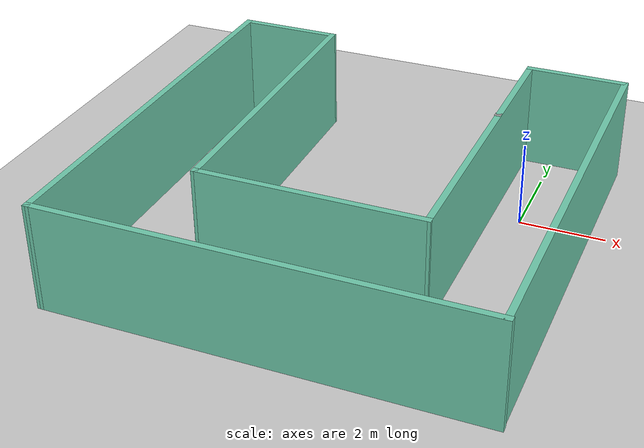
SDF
<sdf version="1.6">
 <world name="default">
  <light name="sun" type="directional">
   <pose>0 0 10 0 -0 0</pose>
   <diffuse>0.8 0.8 0.8 1</diffuse>
   <specular>0.2 0.2 0.2 1</specular>
   <attenuation>
    <range>1000</range>
    <constant>0.9</constant>
    <linear>0.01</linear>
    <quadratic>0.001</quadratic>
   </attenuation>
   <direction>-0.5 0.1 -0.9</direction>
  </light>
  <model name="ground_plane">
   <static>1</static>
   <link name="link">
    <collision name="collision">
     <geometry><plane><normal>0 0 1</normal><size>100 100</size></plane></geometry>
     <surface>
      <contact><collide_bitmask>65535</collide_bitmask></contact>
      <friction><ode><mu>100</mu><mu2>50</mu2></ode></friction>
     </surface>
    </collision>
    <visual name="visual">
     <cast_shadows>0</cast_shadows>
     <geometry><plane><normal>0 0 1</normal><size>100 100</size></plane></geometry>
     <material>
      <script><uri>file://media/materials/scripts/gazebo.material</uri><name>Gazebo/Grey</name></script>
     </material>
    </visual>
   </link>
  </model>
  <gravity>0 0 -9.8</gravity>
  <magnetic_field>6e-06 2.3e-05 -4.2e-05</magnetic_field>
  <atmosphere type="adiabatic"/>
  <physics name="default_physics" default="0" type="ode">
   <max_step_size>0.001</max_step_size>
   <real_time_factor>1</real_time_factor>
   <real_time_update_rate>1000</real_time_update_rate>
  </physics>
  <scene><ambient>0.4 0.4 0.4 1</ambient><background>0.7 0.7 0.7 1</background><shadows>1</shadows></scene>
  <spherical_coordinates>
   <surface_model>EARTH_WGS84</surface_model>
   <latitude_deg>0</latitude_deg>
   <longitude_deg>0</longitude_deg>
   <elevation>0</elevation>
   <heading_deg>0</heading_deg>
  </spherical_coordinates>
  <model name="simple">
   <pose>-3.34842 -1.98124 0 0 -0 0</pose>
   <link name="Wall_13">
    <collision name="Wall_13_Collision">
     <geometry><box><size>2.43882 0.15 2.5</size></box></geometry>
     <pose>0 0 1.25 0 -0 0</pose>
    </collision>
    <visual name="Wall_13_Visual">
     <pose>0 0 1.25 0 -0 0</pose>
     <geometry><box><size>2.43882 0.15 2.5</size></box></geometry>
     <material>
      <script><uri>file://media/materials/scripts/gazebo.material</uri><name>Gazebo/Grey</name></script>
      <ambient>0.435294 0.796078 0.67451 1</ambient>
     </material>
     <meta><layer>0</layer></meta>
    </visual>
    <pose>3.76217 4.92476 0 0 -0 0</pose>
   </link>
   <link name="Wall_15">
    <collision name="Wall_15_Collision">
     <geometry><box><size>10 0.15 2.5</size></box></geometry>
     <pose>0 0 1.25 0 -0 0</pose>
    </collision>
    <visual name="Wall_15_Visual">
     <pose>0 0 1.25 0 -0 0</pose>
     <geometry><box><size>10 0.15 2.5</size></box></geometry>
     <material>
      <script><uri>file://media/materials/scripts/gazebo.material</uri><name>Gazebo/Grey</name></script>
      <ambient>0.435294 0.796078 0.67451 1</ambient>
     </material>
     <meta><layer>0</layer></meta>
    </visual>
    <pose>5.4e-05 -4.92524 0 0 -0 3.14159</pose>
   </link>
   <link name="Wall_17">
    <collision name="Wall_17_Collision">
     <geometry><box><size>10 0.15 2.5</size></box></geometry>
     <pose>0 0 1.25 0 -0 0</pose>
    </collision>
    <visual name="Wall_17_Visual">
     <pose>0 0 1.25 0 -0 0</pose>
     <geometry><box><size>10 0.15 2.5</size></box></geometry>
     <material>
      <script><uri>file://media/materials/scripts/gazebo.material</uri><name>Gazebo/Grey</name></script>
      <ambient>0.435294 0.796078 0.67451 1</ambient>
     </material>
     <meta><layer>0</layer></meta>
    </visual>
    <pose>-4.91794 -0.00024 0 0 0 -1.57222</pose>
   </link>
   <link name="Wall_19">
    <collision name="Wall_19_Collision">
     <geometry><box><size>10 0.15 2.5</size></box></geometry>
     <pose>0 0 1.25 0 -0 0</pose>
    </collision>
    <visual name="Wall_19_Visual">
     <pose>0 0 1.25 0 -0 0</pose>
     <geometry><box><size>10 0.15 2.5</size></box></geometry>
     <material>
      <script><uri>file://media/materials/scripts/gazebo.material</uri><name>Gazebo/Grey</name></script>
      <ambient>0.435294 0.796078 0.67451 1</ambient>
     </material>
     <meta><layer>0</layer></meta>
    </visual>
    <pose>4.90658 -0.00024 0 0 0 -1.5708</pose>
   </link>
   <link name="Wall_27">
    <collision name="Wall_27_Collision">
     <geometry><box><size>7.53775 0.15 2.5</size></box></geometry>
     <pose>0 0 1.25 0 -0 0</pose>
    </collision>
    <visual name="Wall_27_Visual">
     <pose>0 0 1.25 0 -0 0</pose>
     <geometry><box><size>7.53775 0.15 2.5</size></box></geometry>
     <material>
      <script><uri>file://media/materials/scripts/gazebo.material</uri><name>Gazebo/Grey</name></script>
      <ambient>0.435294 0.796078 0.67451 1</ambient>
     </material>
     <meta><layer>0</layer></meta>
    </visual>
    <pose>-2.53211 1.231 0 0 0 -1.56299</pose>
   </link>
   <link name="Wall_28">
    <collision name="Wall_28_Collision">
     <geometry><box><size>5.25 0.15 2.5</size></box></geometry>
     <pose>0 0 1.25 0 -0 0</pose>
    </collision>
    <visual name="Wall_28_Visual">
     <pose>0 0 1.25 0 -0 0</pose>
     <geometry><box><size>5.25 0.15 2.5</size></box></geometry>
     <material>
      <script><uri>file://media/materials/scripts/gazebo.material</uri><name>Gazebo/Grey</name></script>
      <ambient>0.435294 0.796078 0.67451 1</ambient>
     </material>
     <meta><layer>0</layer></meta>
    </visual>
    <pose>0.046719 -2.46277 0 0 -0 0</pose>
   </link>
   <link name="Wall_33">
    <collision name="Wall_33_Collision">
     <geometry><box><size>0.15 0.15 2.5</size></box></geometry>
     <pose>0 0 1.25 0 -0 0</pose>
    </collision>
    <visual name="Wall_33_Visual">
     <pose>0 0 1.25 0 -0 0</pose>
     <geometry><box><size>0.15 0.15 2.5</size></box></geometry>
     <material>
      <script><uri>file://media/materials/scripts/gazebo.material</uri><name>Gazebo/Grey</name></script>
      <ambient>1 1 1 1</ambient>
     </material>
     <meta><layer>0</layer></meta>
    </visual>
    <pose>2.59672 2.28723 0 0 -0 0</pose>
   </link>
   <link name="Wall_37">
    <collision name="Wall_37_Collision">
     <geometry><box><size>7.53756 0.15 2.5</size></box></geometry>
     <pose>0 0 1.25 0 -0 0</pose>
    </collision>
    <visual name="Wall_37_Visual">
     <pose>0 0 1.25 0 -0 0</pose>
     <geometry><box><size>7.53756 0.15 2.5</size></box></geometry>
     <material>
      <script><uri>file://media/materials/scripts/gazebo.material</uri><name>Gazebo/Grey</name></script>
      <ambient>0.435294 0.796078 0.67451 1</ambient>
     </material>
     <meta><layer>0</layer></meta>
    </visual>
    <pose>2.60724 1.231 0 0 0 -1.57364</pose>
   </link>
   <link name="Wall_9">
    <collision name="Wall_9_Collision">
     <geometry><box><size>2.5 0.15 2.5</size></box></geometry>
     <pose>0 0 1.25 0 -0 0</pose>
    </collision>
    <visual name="Wall_9_Visual">
     <pose>0 0 1.25 0 -0 0</pose>
     <geometry><box><size>2.5 0.15 2.5</size></box></geometry>
     <material>
      <script><uri>file://media/materials/scripts/gazebo.material</uri><name>Gazebo/Grey</name></script>
      <ambient>0.435294 0.796078 0.67451 1</ambient>
     </material>
     <meta><layer>0</layer></meta>
    </visual>
    <pose>-3.73594 4.92476 0 0 -0 0</pose>
   </link>
   <static>1</static>
  </model>
 </world>
</sdf>
